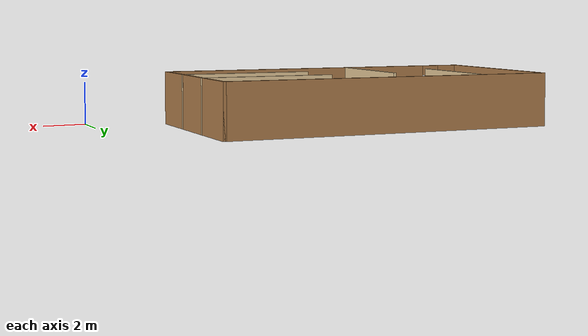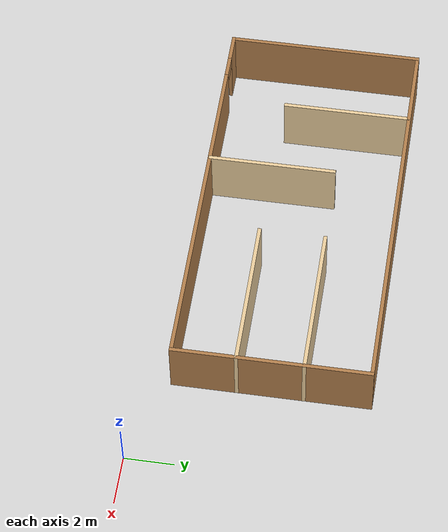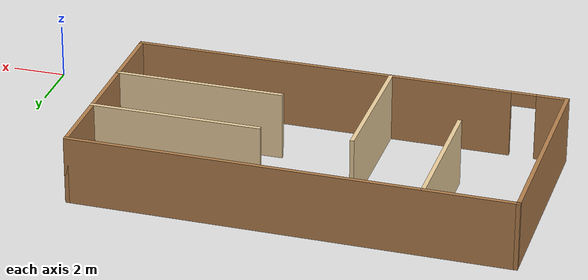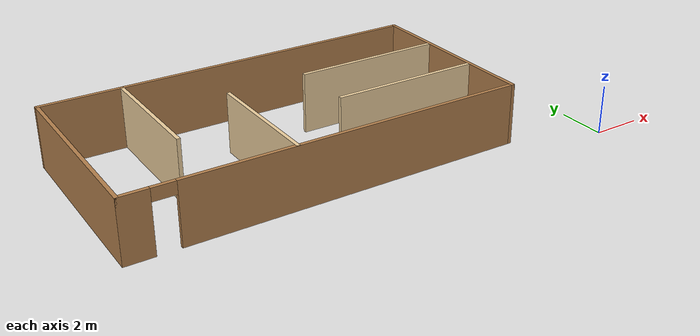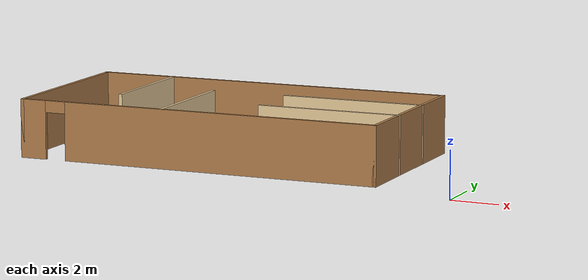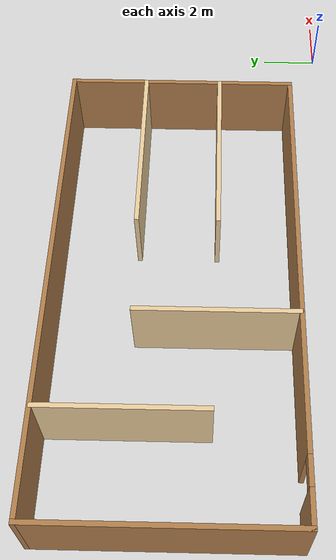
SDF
<?xml version='1.0'?>
<sdf version='1.6'>
  <model name='building'>
    <pose frame=''>-11.5735 5.24966 0 0 -0 0</pose>
    <link name='Wall_0'>
      <collision name='Wall_0_Collision'>
        <geometry>
          <box>
            <size>8 0.15 2.5</size>
          </box>
        </geometry>
        <pose frame=''>0 0 1.25 0 -0 0</pose>
      </collision>
      <visual name='Wall_0_Visual'>
        <pose frame=''>0 0 1.25 0 -0 0</pose>
        <geometry>
          <box>
            <size>8 0.15 2.5</size>
          </box>
        </geometry>
        <material>
          <script>
            <uri>file://media/materials/scripts/gazebo.material</uri>
            <name>Gazebo/Wood</name>
          </script>
          <ambient>1 1 1 1</ambient>
        </material>
        <meta>
          <layer>0</layer>
        </meta>
      </visual>
      <pose frame=''>-7.92584 0 0 0 -0 -1.5708</pose>
    </link>
    <link name='Wall_1'>
      <pose frame=''>-0.000844 -3.925 0 0 -0 0</pose>
      <visual name='Wall_1_Visual_0'>
        <pose frame=''>-7.41662 0 1.25 0 -0 0</pose>
        <geometry>
          <box>
            <size>1.16677 0.15 2.5</size>
          </box>
        </geometry>
        <material>
          <script>
            <uri>file://media/materials/scripts/gazebo.material</uri>
            <name>Gazebo/Wood</name>
          </script>
          <ambient>1 1 1 1</ambient>
        </material>
        <meta>
          <layer>0</layer>
        </meta>
      </visual>
      <collision name='Wall_1_Collision_0'>
        <geometry>
          <box>
            <size>1.16677 0.15 2.5</size>
          </box>
        </geometry>
        <pose frame=''>-7.41662 0 1.25 0 -0 0</pose>
      </collision>
      <visual name='Wall_1_Visual_1'>
        <pose frame=''>1.03338 0 1.25 0 -0 0</pose>
        <geometry>
          <box>
            <size>13.9332 0.15 2.5</size>
          </box>
        </geometry>
        <material>
          <script>
            <uri>file://media/materials/scripts/gazebo.material</uri>
            <name>Gazebo/Wood</name>
          </script>
          <ambient>1 1 1 1</ambient>
        </material>
        <meta>
          <layer>0</layer>
        </meta>
      </visual>
      <collision name='Wall_1_Collision_1'>
        <geometry>
          <box>
            <size>13.9332 0.15 2.5</size>
          </box>
        </geometry>
        <pose frame=''>1.03338 0 1.25 0 -0 0</pose>
      </collision>
      <visual name='Wall_1_Visual_2'>
        <pose frame=''>-6.38323 0 2.25 0 -0 0</pose>
        <geometry>
          <box>
            <size>0.9 0.15 0.5</size>
          </box>
        </geometry>
        <material>
          <script>
            <uri>file://media/materials/scripts/gazebo.material</uri>
            <name>Gazebo/Wood</name>
          </script>
          <ambient>1 1 1 1</ambient>
        </material>
        <meta>
          <layer>0</layer>
        </meta>
      </visual>
      <collision name='Wall_1_Collision_2'>
        <geometry>
          <box>
            <size>0.9 0.15 0.5</size>
          </box>
        </geometry>
        <pose frame=''>-6.38323 0 2.25 0 -0 0</pose>
      </collision>
    </link>
    <link name='Wall_10'>
      <collision name='Wall_10_Collision'>
        <geometry>
          <box>
            <size>6.25 0.15 2.5</size>
          </box>
        </geometry>
        <pose frame=''>0 0 1.25 0 -0 0</pose>
      </collision>
      <visual name='Wall_10_Visual'>
        <pose frame=''>0 0 1.25 0 -0 0</pose>
        <geometry>
          <box>
            <size>6.25 0.15 2.5</size>
          </box>
        </geometry>
        <material>
          <script>
            <uri>file://media/materials/scripts/gazebo.material</uri>
            <name>Gazebo/Grey</name>
          </script>
          <ambient>0.921569 0.807843 0.615686 1</ambient>
        </material>
        <meta>
          <layer>0</layer>
        </meta>
      </visual>
      <pose frame=''>4.87584 1.28992 0 0 -0 3.14159</pose>
    </link>
    <link name='Wall_14'>
      <collision name='Wall_14_Collision'>
        <geometry>
          <box>
            <size>6.25 0.15 2.5</size>
          </box>
        </geometry>
        <pose frame=''>0 0 1.25 0 -0 0</pose>
      </collision>
      <visual name='Wall_14_Visual'>
        <pose frame=''>0 0 1.25 0 -0 0</pose>
        <geometry>
          <box>
            <size>6.25 0.15 2.5</size>
          </box>
        </geometry>
        <material>
          <script>
            <uri>file://media/materials/scripts/gazebo.material</uri>
            <name>Gazebo/Grey</name>
          </script>
          <ambient>0.921569 0.807843 0.615686 1</ambient>
        </material>
        <meta>
          <layer>0</layer>
        </meta>
      </visual>
      <pose frame=''>4.87584 -1.3701 0 0 -0 3.14159</pose>
    </link>
    <link name='Wall_3'>
      <collision name='Wall_3_Collision'>
        <geometry>
          <box>
            <size>16 0.15 2.5</size>
          </box>
        </geometry>
        <pose frame=''>0 0 1.25 0 -0 0</pose>
      </collision>
      <visual name='Wall_3_Visual'>
        <pose frame=''>0 0 1.25 0 -0 0</pose>
        <geometry>
          <box>
            <size>16 0.15 2.5</size>
          </box>
        </geometry>
        <material>
          <script>
            <uri>file://media/materials/scripts/gazebo.material</uri>
            <name>Gazebo/Wood</name>
          </script>
          <ambient>1 1 1 1</ambient>
        </material>
        <meta>
          <layer>0</layer>
        </meta>
      </visual>
      <pose frame=''>-0.000844 3.925 0 0 -0 0</pose>
    </link>
    <link name='Wall_4'>
      <collision name='Wall_4_Collision'>
        <geometry>
          <box>
            <size>8 0.15 2.5</size>
          </box>
        </geometry>
        <pose frame=''>0 0 1.25 0 -0 0</pose>
      </collision>
      <visual name='Wall_4_Visual'>
        <pose frame=''>0 0 1.25 0 -0 0</pose>
        <geometry>
          <box>
            <size>8 0.15 2.5</size>
          </box>
        </geometry>
        <material>
          <script>
            <uri>file://media/materials/scripts/gazebo.material</uri>
            <name>Gazebo/Wood</name>
          </script>
          <ambient>1 1 1 1</ambient>
        </material>
        <meta>
          <layer>0</layer>
        </meta>
      </visual>
      <pose frame=''>7.92416 0 0 0 -0 -1.5708</pose>
    </link>
    <link name='Wall_6'>
      <collision name='Wall_6_Collision'>
        <geometry>
          <box>
            <size>5.25 0.15 2.5</size>
          </box>
        </geometry>
        <pose frame=''>0 0 1.25 0 -0 0</pose>
      </collision>
      <visual name='Wall_6_Visual'>
        <pose frame=''>0 0 1.25 0 -0 0</pose>
        <geometry>
          <box>
            <size>5.25 0.15 2.5</size>
          </box>
        </geometry>
        <material>
          <script>
            <uri>file://media/materials/scripts/gazebo.material</uri>
            <name>Gazebo/Grey</name>
          </script>
          <ambient>0.921569 0.807843 0.615686 1</ambient>
        </material>
        <meta>
          <layer>0</layer>
        </meta>
      </visual>
      <pose frame=''>-4.68496 1.33279 0 0 -0 -1.5708</pose>
    </link>
    <link name='Wall_8'>
      <collision name='Wall_8_Collision'>
        <geometry>
          <box>
            <size>5.25 0.15 2.5</size>
          </box>
        </geometry>
        <pose frame=''>0 0 1.25 0 -0 0</pose>
      </collision>
      <visual name='Wall_8_Visual'>
        <pose frame=''>0 0 1.25 0 -0 0</pose>
        <geometry>
          <box>
            <size>5.25 0.15 2.5</size>
          </box>
        </geometry>
        <material>
          <script>
            <uri>file://media/materials/scripts/gazebo.material</uri>
            <name>Gazebo/Grey</name>
          </script>
          <ambient>0.921569 0.807843 0.615686 1</ambient>
        </material>
        <meta>
          <layer>0</layer>
        </meta>
      </visual>
      <pose frame=''>-1.51723 -1.34711 0 0 -0 1.5708</pose>
    </link>
    <static>1</static>
  </model>
</sdf>
